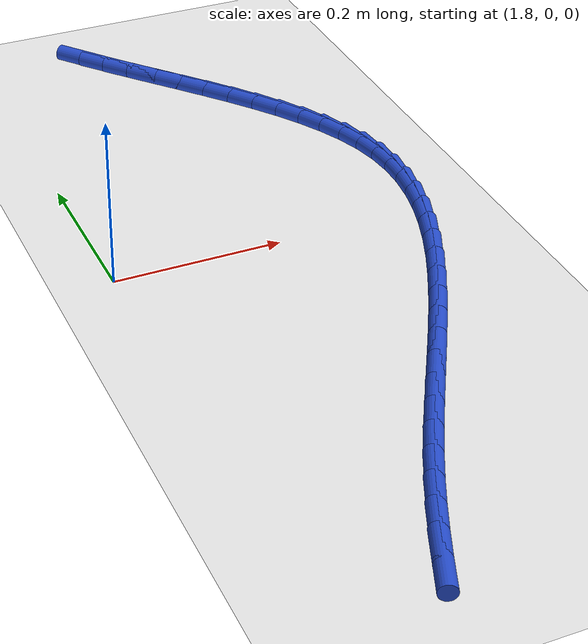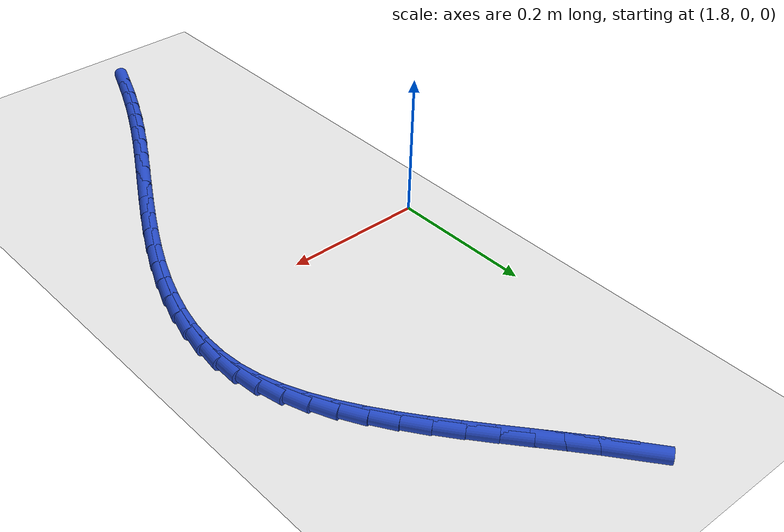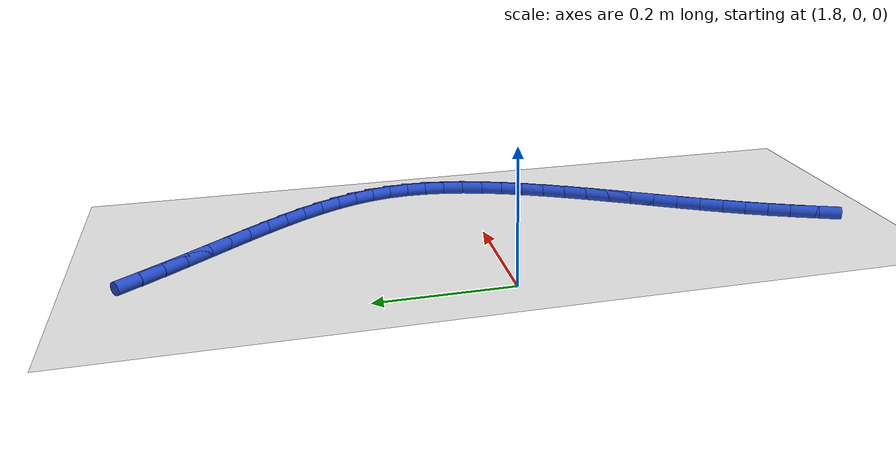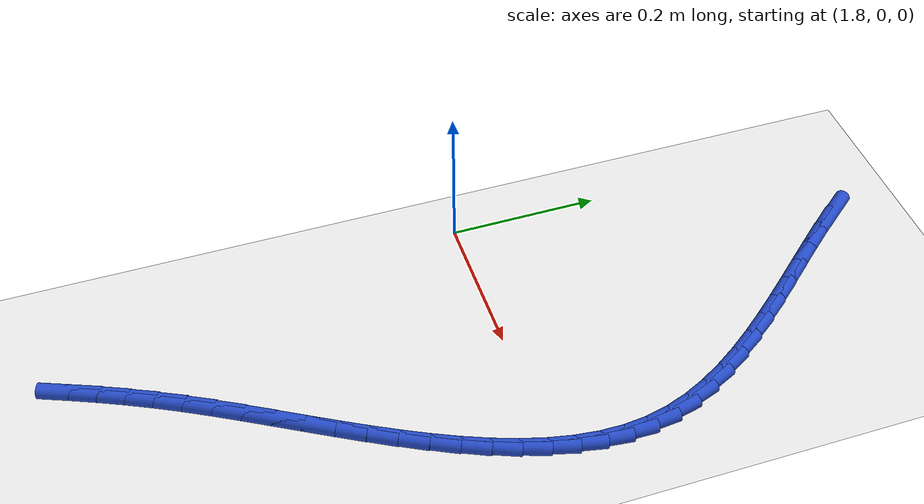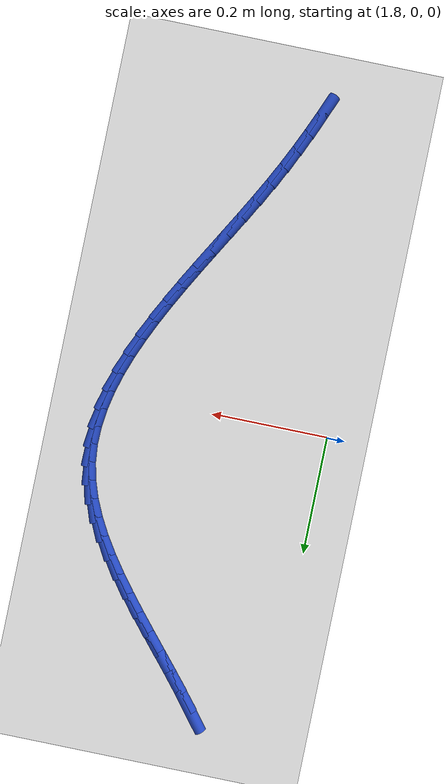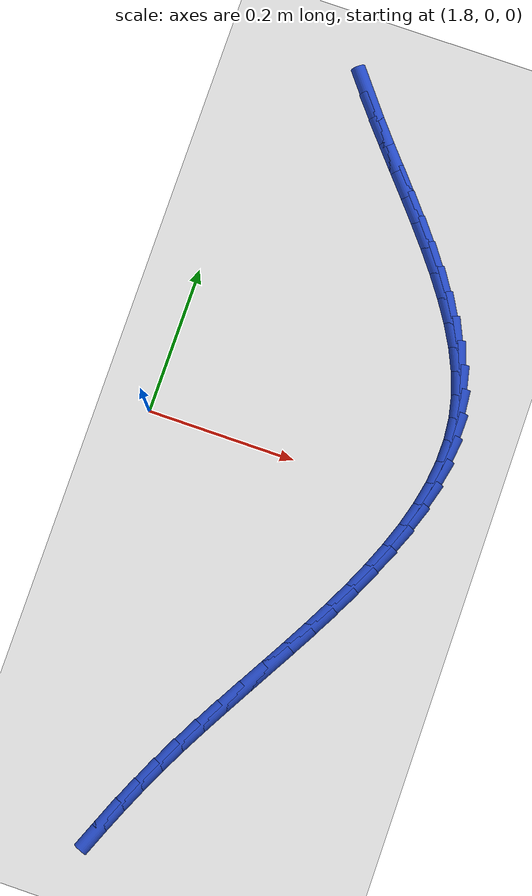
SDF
<sdf version="1.6">
 <world name="default">
  <model name="ground_plane">
   <static>1</static>
   <link name="link">
    <collision name="collision">
     <geometry><plane><normal>0 0 1</normal><size>100 100</size></plane></geometry>
     <surface><friction><ode><mu>100</mu><mu2>50</mu2></ode></friction></surface>
    </collision>
    <visual name="visual">
     <cast_shadows>0</cast_shadows>
     <geometry><plane><normal>0 0 1</normal><size>100 100</size></plane></geometry>
     <material>
      <script><uri>file://media/materials/scripts/gazebo.material</uri><name>Gazebo/WhiteGlow</name></script>
     </material>
    </visual>
   </link>
  </model>
  <model name="line">
   <link name="link_84">
    <pose>1.9352837277165895 0.49669121384356907 0.01 0 1.57 -0.9012541939319493</pose>
    <collision name="collision">
     <geometry><cylinder><radius>0.01</radius><length>0.08</length></cylinder></geometry>
    </collision>
    <visual name="visual">
     <material>
      <script><name>Gazebo/Blue</name><uri>file://media/materials/scripts/gazebo.material</uri></script>
     </material>
     <geometry><cylinder><radius>0.01</radius><length>0.08</length></cylinder></geometry>
    </visual>
   </link>
   <link name="link_85">
    <pose>1.9576622187465444 0.46841802217715234 0.01 0 1.57 -0.8785754589700037</pose>
    <collision name="collision">
     <geometry><cylinder><radius>0.01</radius><length>0.08</length></cylinder></geometry>
    </collision>
    <visual name="visual">
     <material>
      <script><name>Gazebo/Blue</name><uri>file://media/materials/scripts/gazebo.material</uri></script>
     </material>
     <geometry><cylinder><radius>0.01</radius><length>0.08</length></cylinder></geometry>
    </visual>
   </link>
   <link name="link_86">
    <pose>1.9810614481243038 0.4401947818977395 0.01 0 1.57 -0.8659354689195341</pose>
    <collision name="collision">
     <geometry><cylinder><radius>0.01</radius><length>0.08</length></cylinder></geometry>
    </collision>
    <visual name="visual">
     <material>
      <script><name>Gazebo/Blue</name><uri>file://media/materials/scripts/gazebo.material</uri></script>
     </material>
     <geometry><cylinder><radius>0.01</radius><length>0.08</length></cylinder></geometry>
    </visual>
   </link>
   <link name="link_87">
    <pose>2.005072903560713 0.411966998953131 0.01 0 1.57 -0.8629419647385037</pose>
    <collision name="collision">
     <geometry><cylinder><radius>0.01</radius><length>0.08</length></cylinder></geometry>
    </collision>
    <visual name="visual">
     <material>
      <script><name>Gazebo/Blue</name><uri>file://media/materials/scripts/gazebo.material</uri></script>
     </material>
     <geometry><cylinder><radius>0.01</radius><length>0.08</length></cylinder></geometry>
    </visual>
   </link>
   <link name="link_88">
    <pose>2.0292706068475006 0.383692203459604 0.01 0 1.57 -0.8694146638724691</pose>
    <collision name="collision">
     <geometry><cylinder><radius>0.01</radius><length>0.08</length></cylinder></geometry>
    </collision>
    <visual name="visual">
     <material>
      <script><name>Gazebo/Blue</name><uri>file://media/materials/scripts/gazebo.material</uri></script>
     </material>
     <geometry><cylinder><radius>0.01</radius><length>0.08</length></cylinder></geometry>
    </visual>
   </link>
   <link name="link_89">
    <pose>2.05322857977639 0.35532792553343495 0.01 0 1.57 -0.8855469716859478</pose>
    <collision name="collision">
     <geometry><cylinder><radius>0.01</radius><length>0.08</length></cylinder></geometry>
    </collision>
    <visual name="visual">
     <material>
      <script><name>Gazebo/Blue</name><uri>file://media/materials/scripts/gazebo.material</uri></script>
     </material>
     <geometry><cylinder><radius>0.01</radius><length>0.08</length></cylinder></geometry>
    </visual>
   </link>
   <link name="link_90">
    <pose>2.0765208441391096 0.32683169529090084 0.01 0 1.57 -0.9119042986530791</pose>
    <collision name="collision">
     <geometry><cylinder><radius>0.01</radius><length>0.08</length></cylinder></geometry>
    </collision>
    <visual name="visual">
     <material>
      <script><name>Gazebo/Blue</name><uri>file://media/materials/scripts/gazebo.material</uri></script>
     </material>
     <geometry><cylinder><radius>0.01</radius><length>0.08</length></cylinder></geometry>
    </visual>
   </link>
   <link name="link_91">
    <pose>2.0987214217273857 0.29816104284827866 0.01 0 1.57 -0.9494256537342184</pose>
    <collision name="collision">
     <geometry><cylinder><radius>0.01</radius><length>0.08</length></cylinder></geometry>
    </collision>
    <visual name="visual">
     <material>
      <script><name>Gazebo/Blue</name><uri>file://media/materials/scripts/gazebo.material</uri></script>
     </material>
     <geometry><cylinder><radius>0.01</radius><length>0.08</length></cylinder></geometry>
    </visual>
   </link>
   <link name="link_92">
    <pose>2.1194043343329456 0.26927349832184505 0.01 0 1.57 -0.9994109661325922</pose>
    <collision name="collision">
     <geometry><cylinder><radius>0.01</radius><length>0.08</length></cylinder></geometry>
    </collision>
    <visual name="visual">
     <material>
      <script><name>Gazebo/Blue</name><uri>file://media/materials/scripts/gazebo.material</uri></script>
     </material>
     <geometry><cylinder><radius>0.01</radius><length>0.08</length></cylinder></geometry>
    </visual>
   </link>
   <link name="link_93">
    <pose>2.1381436037475154 0.240126591827877 0.01 0 1.57 -1.0634581465497581</pose>
    <collision name="collision">
     <geometry><cylinder><radius>0.01</radius><length>0.08</length></cylinder></geometry>
    </collision>
    <visual name="visual">
     <material>
      <script><name>Gazebo/Blue</name><uri>file://media/materials/scripts/gazebo.material</uri></script>
     </material>
     <geometry><cylinder><radius>0.01</radius><length>0.08</length></cylinder></geometry>
    </visual>
   </link>
   <link name="link_94">
    <pose>2.1545132517628214 0.2106778534826511 0.01 0 1.57 -1.143285776104915</pose>
    <collision name="collision">
     <geometry><cylinder><radius>0.01</radius><length>0.08</length></cylinder></geometry>
    </collision>
    <visual name="visual">
     <material>
      <script><name>Gazebo/Blue</name><uri>file://media/materials/scripts/gazebo.material</uri></script>
     </material>
     <geometry><cylinder><radius>0.01</radius><length>0.08</length></cylinder></geometry>
    </visual>
   </link>
   <link name="link_95">
    <pose>2.16808730017059 0.1808848134024445 0.01 0 1.57 -1.2403475726945512</pose>
    <collision name="collision">
     <geometry><cylinder><radius>0.01</radius><length>0.08</length></cylinder></geometry>
    </collision>
    <visual name="visual">
     <material>
      <script><name>Gazebo/Blue</name><uri>file://media/materials/scripts/gazebo.material</uri></script>
     </material>
     <geometry><cylinder><radius>0.01</radius><length>0.08</length></cylinder></geometry>
    </visual>
   </link>
   <link name="link_96">
    <pose>2.178439770762549 0.15070500170353418 0.01 0 1.57 -1.3550145309084622</pose>
    <collision name="collision">
     <geometry><cylinder><radius>0.01</radius><length>0.08</length></cylinder></geometry>
    </collision>
    <visual name="visual">
     <material>
      <script><name>Gazebo/Blue</name><uri>file://media/materials/scripts/gazebo.material</uri></script>
     </material>
     <geometry><cylinder><radius>0.01</radius><length>0.08</length></cylinder></geometry>
    </visual>
   </link>
   <link name="link_97">
    <pose>2.1851489954741363 0.12009644710849904 0.01 0 1.57 -1.4772396991339811</pose>
    <collision name="collision">
     <geometry><cylinder><radius>0.01</radius><length>0.08</length></cylinder></geometry>
    </collision>
    <visual name="visual">
     <material>
      <script><name>Gazebo/Blue</name><uri>file://media/materials/scripts/gazebo.material</uri></script>
     </material>
     <geometry><cylinder><radius>0.01</radius><length>0.08</length></cylinder></geometry>
    </visual>
   </link>
   <link name="link_98">
    <pose>2.1880622609496325 0.08904829157463415 0.01 0 1.57 1.551324289042514</pose>
    <collision name="collision">
     <geometry><cylinder><radius>0.01</radius><length>0.08</length></cylinder></geometry>
    </collision>
    <visual name="visual">
     <material>
      <script><name>Gazebo/Blue</name><uri>file://media/materials/scripts/gazebo.material</uri></script>
     </material>
     <geometry><cylinder><radius>0.01</radius><length>0.08</length></cylinder></geometry>
    </visual>
   </link>
   <link name="link_99">
    <pose>2.187449794029447 0.05759860365229981 0.01 0 1.57 1.4509394404976883</pose>
    <collision name="collision">
     <geometry><cylinder><radius>0.01</radius><length>0.08</length></cylinder></geometry>
    </collision>
    <visual name="visual">
     <material>
      <script><name>Gazebo/Blue</name><uri>file://media/materials/scripts/gazebo.material</uri></script>
     </material>
     <geometry><cylinder><radius>0.01</radius><length>0.08</length></cylinder></geometry>
    </visual>
   </link>
   <link name="link_100">
    <pose>2.1836189211645074 0.025789743651219506 0.01 0 1.57 1.3639364676030965</pose>
    <collision name="collision">
     <geometry><cylinder><radius>0.01</radius><length>0.08</length></cylinder></geometry>
    </collision>
    <visual name="visual">
     <material>
      <script><name>Gazebo/Blue</name><uri>file://media/materials/scripts/gazebo.material</uri></script>
     </material>
     <geometry><cylinder><radius>0.01</radius><length>0.08</length></cylinder></geometry>
    </visual>
   </link>
   <link name="link_101">
    <pose>2.176876968805741 -0.006335928118883378 0.01 0 1.57 1.2899723926750417</pose>
    <collision name="collision">
     <geometry><cylinder><radius>0.01</radius><length>0.08</length></cylinder></geometry>
    </collision>
    <visual name="visual">
     <material>
      <script><name>Gazebo/Blue</name><uri>file://media/materials/scripts/gazebo.material</uri></script>
     </material>
     <geometry><cylinder><radius>0.01</radius><length>0.08</length></cylinder></geometry>
    </visual>
   </link>
   <link name="link_102">
    <pose>2.1675312634040766 -0.03873605134828547 0.01 0 1.57 1.228104820314728</pose>
    <collision name="collision">
     <geometry><cylinder><radius>0.01</radius><length>0.08</length></cylinder></geometry>
    </collision>
    <visual name="visual">
     <material>
      <script><name>Gazebo/Blue</name><uri>file://media/materials/scripts/gazebo.material</uri></script>
     </material>
     <geometry><cylinder><radius>0.01</radius><length>0.08</length></cylinder></geometry>
    </visual>
   </link>
   <link name="link_103">
    <pose>2.1558891314104405 -0.07136826572726337 0.01 0 1.57 1.177163037522495</pose>
    <collision name="collision">
     <geometry><cylinder><radius>0.01</radius><length>0.08</length></cylinder></geometry>
    </collision>
    <visual name="visual">
     <material>
      <script><name>Gazebo/Blue</name><uri>file://media/materials/scripts/gazebo.material</uri></script>
     </material>
     <geometry><cylinder><radius>0.01</radius><length>0.08</length></cylinder></geometry>
    </visual>
   </link>
   <link name="link_104">
    <pose>2.142257899275761 -0.10419021094609367 0.01 0 1.57 1.1359808105266307</pose>
    <collision name="collision">
     <geometry><cylinder><radius>0.01</radius><length>0.08</length></cylinder></geometry>
    </collision>
    <visual name="visual">
     <material>
      <script><name>Gazebo/Blue</name><uri>file://media/materials/scripts/gazebo.material</uri></script>
     </material>
     <geometry><cylinder><radius>0.01</radius><length>0.08</length></cylinder></geometry>
    </visual>
   </link>
   <link name="link_105">
    <pose>2.1269448934509647 -0.13715952669505302 0.01 0 1.57 1.103520120826916</pose>
    <collision name="collision">
     <geometry><cylinder><radius>0.01</radius><length>0.08</length></cylinder></geometry>
    </collision>
    <visual name="visual">
     <material>
      <script><name>Gazebo/Blue</name><uri>file://media/materials/scripts/gazebo.material</uri></script>
     </material>
     <geometry><cylinder><radius>0.01</radius><length>0.08</length></cylinder></geometry>
    </visual>
   </link>
   <link name="link_106">
    <pose>2.11025744038698 -0.17023385266441796 0.01 0 1.57 1.0789256598542571</pose>
    <collision name="collision">
     <geometry><cylinder><radius>0.01</radius><length>0.08</length></cylinder></geometry>
    </collision>
    <visual name="visual">
     <material>
      <script><name>Gazebo/Blue</name><uri>file://media/materials/scripts/gazebo.material</uri></script>
     </material>
     <geometry><cylinder><radius>0.01</radius><length>0.08</length></cylinder></geometry>
    </visual>
   </link>
   <link name="link_107">
    <pose>2.0925028665347347 -0.20337082854446514 0.01 0 1.57 1.0615417801339495</pose>
    <collision name="collision">
     <geometry><cylinder><radius>0.01</radius><length>0.08</length></cylinder></geometry>
    </collision>
    <visual name="visual">
     <material>
      <script><name>Gazebo/Blue</name><uri>file://media/materials/scripts/gazebo.material</uri></script>
     </material>
     <geometry><cylinder><radius>0.01</radius><length>0.08</length></cylinder></geometry>
    </visual>
   </link>
   <link name="link_108">
    <pose>2.073988498345156 -0.23652809402547115 0.01 0 1.57 1.0509125150513103</pose>
    <collision name="collision">
     <geometry><cylinder><radius>0.01</radius><length>0.08</length></cylinder></geometry>
    </collision>
    <visual name="visual">
     <material>
      <script><name>Gazebo/Blue</name><uri>file://media/materials/scripts/gazebo.material</uri></script>
     </material>
     <geometry><cylinder><radius>0.01</radius><length>0.08</length></cylinder></geometry>
    </visual>
   </link>
   <link name="link_109">
    <pose>2.055021662269171 -0.2696632887977126 0.01 0 1.57 1.0467766663594824</pose>
    <collision name="collision">
     <geometry><cylinder><radius>0.01</radius><length>0.08</length></cylinder></geometry>
    </collision>
    <visual name="visual">
     <material>
      <script><name>Gazebo/Blue</name><uri>file://media/materials/scripts/gazebo.material</uri></script>
     </material>
     <geometry><cylinder><radius>0.01</radius><length>0.08</length></cylinder></geometry>
    </visual>
   </link>
   <link name="link_110">
    <pose>2.0359096847577085 -0.3027340525514661 0.01 0 1.57 1.0490644555098583</pose>
    <collision name="collision">
     <geometry><cylinder><radius>0.01</radius><length>0.08</length></cylinder></geometry>
    </collision>
    <visual name="visual">
     <material>
      <script><name>Gazebo/Blue</name><uri>file://media/materials/scripts/gazebo.material</uri></script>
     </material>
     <geometry><cylinder><radius>0.01</radius><length>0.08</length></cylinder></geometry>
    </visual>
   </link>
   <link name="link_111">
    <pose>2.016959892261695 -0.3356980249770083 0.01 0 1.57 1.0578990130832435</pose>
    <collision name="collision">
     <geometry><cylinder><radius>0.01</radius><length>0.08</length></cylinder></geometry>
    </collision>
    <visual name="visual">
     <material>
      <script><name>Gazebo/Blue</name><uri>file://media/materials/scripts/gazebo.material</uri></script>
     </material>
     <geometry><cylinder><radius>0.01</radius><length>0.08</length></cylinder></geometry>
    </visual>
   </link>
   <link name="link_112">
    <pose>1.9984796112320584 -0.3685128457646157 0.01 0 1.57 1.07360403789325</pose>
    <collision name="collision">
     <geometry><cylinder><radius>0.01</radius><length>0.08</length></cylinder></geometry>
    </collision>
    <visual name="visual">
     <material>
      <script><name>Gazebo/Blue</name><uri>file://media/materials/scripts/gazebo.material</uri></script>
     </material>
     <geometry><cylinder><radius>0.01</radius><length>0.08</length></cylinder></geometry>
    </visual>
   </link>
   <link name="link_113">
    <pose>1.9807761681197258 -0.40113615460456487 0.01 0 1.57 1.0964303216780242</pose>
    <collision name="collision">
     <geometry><cylinder><radius>0.01</radius><length>0.08</length></cylinder></geometry>
    </collision>
    <visual name="visual">
     <material>
      <script><name>Gazebo/Blue</name><uri>file://media/materials/scripts/gazebo.material</uri></script>
     </material>
     <geometry><cylinder><radius>0.01</radius><length>0.08</length></cylinder></geometry>
    </visual>
   </link>
   <link name="link_114">
    <pose>1.9641436311435863 -0.43352853234570604 0.01 0 1.57 1.1216639060451326</pose>
    <collision name="collision">
     <geometry><cylinder><radius>0.01</radius><length>0.08</length></cylinder></geometry>
    </collision>
    <visual name="visual">
     <material>
      <script><name>Gazebo/Blue</name><uri>file://media/materials/scripts/gazebo.material</uri></script>
     </material>
     <geometry><cylinder><radius>0.01</radius><length>0.08</length></cylinder></geometry>
    </visual>
   </link>
   <link name="link_115">
    <pose>1.948635564814731 -0.46570391231556074 0.01 0 1.57 1.1445464164465677</pose>
    <collision name="collision">
     <geometry><cylinder><radius>0.01</radius><length>0.08</length></cylinder></geometry>
    </collision>
    <visual name="visual">
     <material>
      <script><name>Gazebo/Blue</name><uri>file://media/materials/scripts/gazebo.material</uri></script>
     </material>
     <geometry><cylinder><radius>0.01</radius><length>0.08</length></cylinder></geometry>
    </visual>
   </link>
   <link name="link_116">
    <pose>1.9340961678902173 -0.49772267278850413 0.01 0 1.57 1.1645351284302945</pose>
    <collision name="collision">
     <geometry><cylinder><radius>0.01</radius><length>0.08</length></cylinder></geometry>
    </collision>
    <visual name="visual">
     <material>
      <script><name>Gazebo/Blue</name><uri>file://media/materials/scripts/gazebo.material</uri></script>
     </material>
     <geometry><cylinder><radius>0.01</radius><length>0.08</length></cylinder></geometry>
    </visual>
   </link>
   <link name="link_117">
    <pose>1.9203626460404006 -0.5296467433601482 0.01 0 1.57 1.1812963973283637</pose>
    <collision name="collision">
     <geometry><cylinder><radius>0.01</radius><length>0.08</length></cylinder></geometry>
    </collision>
    <visual name="visual">
     <material>
      <script><name>Gazebo/Blue</name><uri>file://media/materials/scripts/gazebo.material</uri></script>
     </material>
     <geometry><cylinder><radius>0.01</radius><length>0.08</length></cylinder></geometry>
    </visual>
   </link>
  </model>
 </world>
</sdf>
